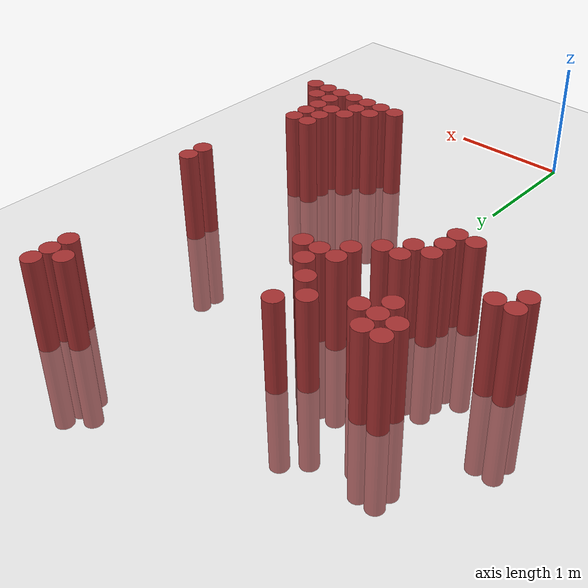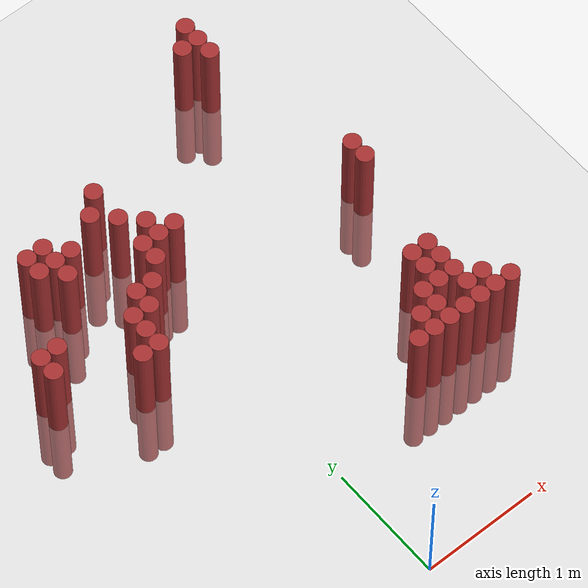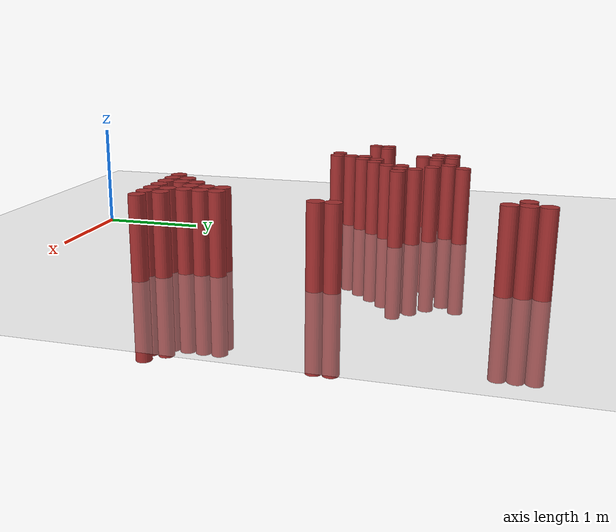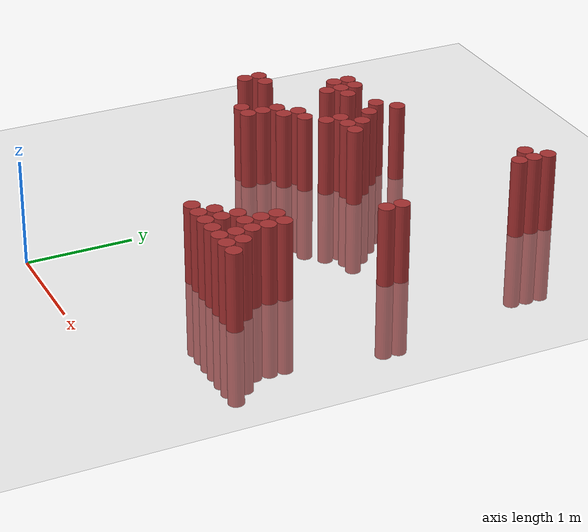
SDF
<sdf version="1.6">
 <world name="default">
  <model name="ground_plane">
   <static>1</static>
   <link name="link">
    <collision name="collision">
     <geometry><plane><normal>0 0 1</normal><size>100 100</size></plane></geometry>
     <surface><friction><ode><mu>100</mu><mu2>50</mu2></ode></friction></surface>
    </collision>
    <visual name="visual">
     <cast_shadows>0</cast_shadows>
     <geometry><plane><normal>0 0 1</normal><size>100 100</size></plane></geometry>
     <material>
      <script><uri>file://media/materials/scripts/gazebo.material</uri><name>Gazebo/Grey</name></script>
     </material>
    </visual>
   </link>
  </model>
  <model name="unit_cylinder_156">
   <static>1</static>
   <pose>-1.325000 2.725000 0.000000 0.000000 0.000000 0.000000</pose>
   <link name="link">
    <inertial>
     <mass>1</mass>
     <inertia><ixx>0.145833</ixx><ixy>0</ixy><ixz>0</ixz><iyy>0.145833</iyy><iyz>0</iyz><izz>0.125</izz></inertia>
    </inertial>
    <collision name="collision">
     <geometry><cylinder><radius>0.075000</radius><length>1.5</length></cylinder></geometry>
    </collision>
    <visual name="visual">
     <geometry><cylinder><radius>0.075000</radius><length>1.5</length></cylinder></geometry>
     <material>
      <ambient>0.648000 0.192000 0.192000 1</ambient>
      <diffuse>0.648000 0.192000 0.192000 1</diffuse>
     </material>
     <material>
      <script><name>Gazebo/Grey</name><uri>file://media/materials/scripts/gazebo.material</uri></script>
     </material>
    </visual>
   </link>
  </model>
  <model name="unit_cylinder_157">
   <static>1</static>
   <pose>-1.325000 2.875000 0.000000 0.000000 0.000000 0.000000</pose>
   <link name="link">
    <inertial>
     <mass>1</mass>
     <inertia><ixx>0.145833</ixx><ixy>0</ixy><ixz>0</ixz><iyy>0.145833</iyy><iyz>0</iyz><izz>0.125</izz></inertia>
    </inertial>
    <collision name="collision">
     <geometry><cylinder><radius>0.075000</radius><length>1.5</length></cylinder></geometry>
    </collision>
    <visual name="visual">
     <geometry><cylinder><radius>0.075000</radius><length>1.5</length></cylinder></geometry>
     <material>
      <ambient>0.648000 0.192000 0.192000 1</ambient>
      <diffuse>0.648000 0.192000 0.192000 1</diffuse>
     </material>
     <material>
      <script><name>Gazebo/Grey</name><uri>file://media/materials/scripts/gazebo.material</uri></script>
     </material>
    </visual>
   </link>
  </model>
  <model name="unit_cylinder_159">
   <static>1</static>
   <pose>-1.175000 2.875000 0.000000 0.000000 0.000000 0.000000</pose>
   <link name="link">
    <inertial>
     <mass>1</mass>
     <inertia><ixx>0.145833</ixx><ixy>0</ixy><ixz>0</ixz><iyy>0.145833</iyy><iyz>0</iyz><izz>0.125</izz></inertia>
    </inertial>
    <collision name="collision">
     <geometry><cylinder><radius>0.075000</radius><length>1.5</length></cylinder></geometry>
    </collision>
    <visual name="visual">
     <geometry><cylinder><radius>0.075000</radius><length>1.5</length></cylinder></geometry>
     <material>
      <ambient>0.648000 0.192000 0.192000 1</ambient>
      <diffuse>0.648000 0.192000 0.192000 1</diffuse>
     </material>
     <material>
      <script><name>Gazebo/Grey</name><uri>file://media/materials/scripts/gazebo.material</uri></script>
     </material>
    </visual>
   </link>
  </model>
  <model name="unit_cylinder_166">
   <static>1</static>
   <pose>-0.875000 3.475000 0.000000 0.000000 0.000000 0.000000</pose>
   <link name="link">
    <inertial>
     <mass>1</mass>
     <inertia><ixx>0.145833</ixx><ixy>0</ixy><ixz>0</ixz><iyy>0.145833</iyy><iyz>0</iyz><izz>0.125</izz></inertia>
    </inertial>
    <collision name="collision">
     <geometry><cylinder><radius>0.075000</radius><length>1.5</length></cylinder></geometry>
    </collision>
    <visual name="visual">
     <geometry><cylinder><radius>0.075000</radius><length>1.5</length></cylinder></geometry>
     <material>
      <ambient>0.648000 0.192000 0.192000 1</ambient>
      <diffuse>0.648000 0.192000 0.192000 1</diffuse>
     </material>
     <material>
      <script><name>Gazebo/Grey</name><uri>file://media/materials/scripts/gazebo.material</uri></script>
     </material>
    </visual>
   </link>
  </model>
  <model name="unit_cylinder_167">
   <static>1</static>
   <pose>-0.875000 3.625000 0.000000 0.000000 0.000000 0.000000</pose>
   <link name="link">
    <inertial>
     <mass>1</mass>
     <inertia><ixx>0.145833</ixx><ixy>0</ixy><ixz>0</ixz><iyy>0.145833</iyy><iyz>0</iyz><izz>0.125</izz></inertia>
    </inertial>
    <collision name="collision">
     <geometry><cylinder><radius>0.075000</radius><length>1.5</length></cylinder></geometry>
    </collision>
    <visual name="visual">
     <geometry><cylinder><radius>0.075000</radius><length>1.5</length></cylinder></geometry>
     <material>
      <ambient>0.648000 0.192000 0.192000 1</ambient>
      <diffuse>0.648000 0.192000 0.192000 1</diffuse>
     </material>
     <material>
      <script><name>Gazebo/Grey</name><uri>file://media/materials/scripts/gazebo.material</uri></script>
     </material>
    </visual>
   </link>
  </model>
  <model name="unit_cylinder_170">
   <static>1</static>
   <pose>-0.725000 2.425000 0.000000 0.000000 0.000000 0.000000</pose>
   <link name="link">
    <inertial>
     <mass>1</mass>
     <inertia><ixx>0.145833</ixx><ixy>0</ixy><ixz>0</ixz><iyy>0.145833</iyy><iyz>0</iyz><izz>0.125</izz></inertia>
    </inertial>
    <collision name="collision">
     <geometry><cylinder><radius>0.075000</radius><length>1.5</length></cylinder></geometry>
    </collision>
    <visual name="visual">
     <geometry><cylinder><radius>0.075000</radius><length>1.5</length></cylinder></geometry>
     <material>
      <ambient>0.648000 0.192000 0.192000 1</ambient>
      <diffuse>0.648000 0.192000 0.192000 1</diffuse>
     </material>
     <material>
      <script><name>Gazebo/Grey</name><uri>file://media/materials/scripts/gazebo.material</uri></script>
     </material>
    </visual>
   </link>
  </model>
  <model name="unit_cylinder_171">
   <static>1</static>
   <pose>-0.725000 3.325000 0.000000 0.000000 0.000000 0.000000</pose>
   <link name="link">
    <inertial>
     <mass>1</mass>
     <inertia><ixx>0.145833</ixx><ixy>0</ixy><ixz>0</ixz><iyy>0.145833</iyy><iyz>0</iyz><izz>0.125</izz></inertia>
    </inertial>
    <collision name="collision">
     <geometry><cylinder><radius>0.075000</radius><length>1.5</length></cylinder></geometry>
    </collision>
    <visual name="visual">
     <geometry><cylinder><radius>0.075000</radius><length>1.5</length></cylinder></geometry>
     <material>
      <ambient>0.648000 0.192000 0.192000 1</ambient>
      <diffuse>0.648000 0.192000 0.192000 1</diffuse>
     </material>
     <material>
      <script><name>Gazebo/Grey</name><uri>file://media/materials/scripts/gazebo.material</uri></script>
     </material>
    </visual>
   </link>
  </model>
  <model name="unit_cylinder_172">
   <static>1</static>
   <pose>-0.725000 3.475000 0.000000 0.000000 0.000000 0.000000</pose>
   <link name="link">
    <inertial>
     <mass>1</mass>
     <inertia><ixx>0.145833</ixx><ixy>0</ixy><ixz>0</ixz><iyy>0.145833</iyy><iyz>0</iyz><izz>0.125</izz></inertia>
    </inertial>
    <collision name="collision">
     <geometry><cylinder><radius>0.075000</radius><length>1.5</length></cylinder></geometry>
    </collision>
    <visual name="visual">
     <geometry><cylinder><radius>0.075000</radius><length>1.5</length></cylinder></geometry>
     <material>
      <ambient>0.648000 0.192000 0.192000 1</ambient>
      <diffuse>0.648000 0.192000 0.192000 1</diffuse>
     </material>
     <material>
      <script><name>Gazebo/Grey</name><uri>file://media/materials/scripts/gazebo.material</uri></script>
     </material>
    </visual>
   </link>
  </model>
  <model name="unit_cylinder_173">
   <static>1</static>
   <pose>-0.725000 3.625000 0.000000 0.000000 0.000000 0.000000</pose>
   <link name="link">
    <inertial>
     <mass>1</mass>
     <inertia><ixx>0.145833</ixx><ixy>0</ixy><ixz>0</ixz><iyy>0.145833</iyy><iyz>0</iyz><izz>0.125</izz></inertia>
    </inertial>
    <collision name="collision">
     <geometry><cylinder><radius>0.075000</radius><length>1.5</length></cylinder></geometry>
    </collision>
    <visual name="visual">
     <geometry><cylinder><radius>0.075000</radius><length>1.5</length></cylinder></geometry>
     <material>
      <ambient>0.648000 0.192000 0.192000 1</ambient>
      <diffuse>0.648000 0.192000 0.192000 1</diffuse>
     </material>
     <material>
      <script><name>Gazebo/Grey</name><uri>file://media/materials/scripts/gazebo.material</uri></script>
     </material>
    </visual>
   </link>
  </model>
  <model name="unit_cylinder_176">
   <static>1</static>
   <pose>-0.575000 2.425000 0.000000 0.000000 0.000000 0.000000</pose>
   <link name="link">
    <inertial>
     <mass>1</mass>
     <inertia><ixx>0.145833</ixx><ixy>0</ixy><ixz>0</ixz><iyy>0.145833</iyy><iyz>0</iyz><izz>0.125</izz></inertia>
    </inertial>
    <collision name="collision">
     <geometry><cylinder><radius>0.075000</radius><length>1.5</length></cylinder></geometry>
    </collision>
    <visual name="visual">
     <geometry><cylinder><radius>0.075000</radius><length>1.5</length></cylinder></geometry>
     <material>
      <ambient>0.648000 0.192000 0.192000 1</ambient>
      <diffuse>0.648000 0.192000 0.192000 1</diffuse>
     </material>
     <material>
      <script><name>Gazebo/Grey</name><uri>file://media/materials/scripts/gazebo.material</uri></script>
     </material>
    </visual>
   </link>
  </model>
  <model name="unit_cylinder_177">
   <static>1</static>
   <pose>-0.575000 2.575000 0.000000 0.000000 0.000000 0.000000</pose>
   <link name="link">
    <inertial>
     <mass>1</mass>
     <inertia><ixx>0.145833</ixx><ixy>0</ixy><ixz>0</ixz><iyy>0.145833</iyy><iyz>0</iyz><izz>0.125</izz></inertia>
    </inertial>
    <collision name="collision">
     <geometry><cylinder><radius>0.075000</radius><length>1.5</length></cylinder></geometry>
    </collision>
    <visual name="visual">
     <geometry><cylinder><radius>0.075000</radius><length>1.5</length></cylinder></geometry>
     <material>
      <ambient>0.648000 0.192000 0.192000 1</ambient>
      <diffuse>0.648000 0.192000 0.192000 1</diffuse>
     </material>
     <material>
      <script><name>Gazebo/Grey</name><uri>file://media/materials/scripts/gazebo.material</uri></script>
     </material>
    </visual>
   </link>
  </model>
  <model name="unit_cylinder_178">
   <static>1</static>
   <pose>-0.575000 2.725000 0.000000 0.000000 0.000000 0.000000</pose>
   <link name="link">
    <inertial>
     <mass>1</mass>
     <inertia><ixx>0.145833</ixx><ixy>0</ixy><ixz>0</ixz><iyy>0.145833</iyy><iyz>0</iyz><izz>0.125</izz></inertia>
    </inertial>
    <collision name="collision">
     <geometry><cylinder><radius>0.075000</radius><length>1.5</length></cylinder></geometry>
    </collision>
    <visual name="visual">
     <geometry><cylinder><radius>0.075000</radius><length>1.5</length></cylinder></geometry>
     <material>
      <ambient>0.648000 0.192000 0.192000 1</ambient>
      <diffuse>0.648000 0.192000 0.192000 1</diffuse>
     </material>
     <material>
      <script><name>Gazebo/Grey</name><uri>file://media/materials/scripts/gazebo.material</uri></script>
     </material>
    </visual>
   </link>
  </model>
  <model name="unit_cylinder_179">
   <static>1</static>
   <pose>-0.575000 3.475000 0.000000 0.000000 0.000000 0.000000</pose>
   <link name="link">
    <inertial>
     <mass>1</mass>
     <inertia><ixx>0.145833</ixx><ixy>0</ixy><ixz>0</ixz><iyy>0.145833</iyy><iyz>0</iyz><izz>0.125</izz></inertia>
    </inertial>
    <collision name="collision">
     <geometry><cylinder><radius>0.075000</radius><length>1.5</length></cylinder></geometry>
    </collision>
    <visual name="visual">
     <geometry><cylinder><radius>0.075000</radius><length>1.5</length></cylinder></geometry>
     <material>
      <ambient>0.648000 0.192000 0.192000 1</ambient>
      <diffuse>0.648000 0.192000 0.192000 1</diffuse>
     </material>
     <material>
      <script><name>Gazebo/Grey</name><uri>file://media/materials/scripts/gazebo.material</uri></script>
     </material>
    </visual>
   </link>
  </model>
  <model name="unit_cylinder_182">
   <static>1</static>
   <pose>-0.425000 2.725000 0.000000 0.000000 0.000000 0.000000</pose>
   <link name="link">
    <inertial>
     <mass>1</mass>
     <inertia><ixx>0.145833</ixx><ixy>0</ixy><ixz>0</ixz><iyy>0.145833</iyy><iyz>0</iyz><izz>0.125</izz></inertia>
    </inertial>
    <collision name="collision">
     <geometry><cylinder><radius>0.075000</radius><length>1.5</length></cylinder></geometry>
    </collision>
    <visual name="visual">
     <geometry><cylinder><radius>0.075000</radius><length>1.5</length></cylinder></geometry>
     <material>
      <ambient>0.648000 0.192000 0.192000 1</ambient>
      <diffuse>0.648000 0.192000 0.192000 1</diffuse>
     </material>
     <material>
      <script><name>Gazebo/Grey</name><uri>file://media/materials/scripts/gazebo.material</uri></script>
     </material>
    </visual>
   </link>
  </model>
  <model name="unit_cylinder_183">
   <static>1</static>
   <pose>-0.425000 2.875000 0.000000 0.000000 0.000000 0.000000</pose>
   <link name="link">
    <inertial>
     <mass>1</mass>
     <inertia><ixx>0.145833</ixx><ixy>0</ixy><ixz>0</ixz><iyy>0.145833</iyy><iyz>0</iyz><izz>0.125</izz></inertia>
    </inertial>
    <collision name="collision">
     <geometry><cylinder><radius>0.075000</radius><length>1.5</length></cylinder></geometry>
    </collision>
    <visual name="visual">
     <geometry><cylinder><radius>0.075000</radius><length>1.5</length></cylinder></geometry>
     <material>
      <ambient>0.648000 0.192000 0.192000 1</ambient>
      <diffuse>0.648000 0.192000 0.192000 1</diffuse>
     </material>
     <material>
      <script><name>Gazebo/Grey</name><uri>file://media/materials/scripts/gazebo.material</uri></script>
     </material>
    </visual>
   </link>
  </model>
  <model name="unit_cylinder_185">
   <static>1</static>
   <pose>-0.275000 2.875000 0.000000 0.000000 0.000000 0.000000</pose>
   <link name="link">
    <inertial>
     <mass>1</mass>
     <inertia><ixx>0.145833</ixx><ixy>0</ixy><ixz>0</ixz><iyy>0.145833</iyy><iyz>0</iyz><izz>0.125</izz></inertia>
    </inertial>
    <collision name="collision">
     <geometry><cylinder><radius>0.075000</radius><length>1.5</length></cylinder></geometry>
    </collision>
    <visual name="visual">
     <geometry><cylinder><radius>0.075000</radius><length>1.5</length></cylinder></geometry>
     <material>
      <ambient>0.648000 0.192000 0.192000 1</ambient>
      <diffuse>0.648000 0.192000 0.192000 1</diffuse>
     </material>
     <material>
      <script><name>Gazebo/Grey</name><uri>file://media/materials/scripts/gazebo.material</uri></script>
     </material>
    </visual>
   </link>
  </model>
  <model name="unit_cylinder_186">
   <static>1</static>
   <pose>-0.275000 3.625000 0.000000 0.000000 0.000000 0.000000</pose>
   <link name="link">
    <inertial>
     <mass>1</mass>
     <inertia><ixx>0.145833</ixx><ixy>0</ixy><ixz>0</ixz><iyy>0.145833</iyy><iyz>0</iyz><izz>0.125</izz></inertia>
    </inertial>
    <collision name="collision">
     <geometry><cylinder><radius>0.075000</radius><length>1.5</length></cylinder></geometry>
    </collision>
    <visual name="visual">
     <geometry><cylinder><radius>0.075000</radius><length>1.5</length></cylinder></geometry>
     <material>
      <ambient>0.648000 0.192000 0.192000 1</ambient>
      <diffuse>0.648000 0.192000 0.192000 1</diffuse>
     </material>
     <material>
      <script><name>Gazebo/Grey</name><uri>file://media/materials/scripts/gazebo.material</uri></script>
     </material>
    </visual>
   </link>
  </model>
  <model name="unit_cylinder_187">
   <static>1</static>
   <pose>-0.125000 3.025000 0.000000 0.000000 0.000000 0.000000</pose>
   <link name="link">
    <inertial>
     <mass>1</mass>
     <inertia><ixx>0.145833</ixx><ixy>0</ixy><ixz>0</ixz><iyy>0.145833</iyy><iyz>0</iyz><izz>0.125</izz></inertia>
    </inertial>
    <collision name="collision">
     <geometry><cylinder><radius>0.075000</radius><length>1.5</length></cylinder></geometry>
    </collision>
    <visual name="visual">
     <geometry><cylinder><radius>0.075000</radius><length>1.5</length></cylinder></geometry>
     <material>
      <ambient>0.648000 0.192000 0.192000 1</ambient>
      <diffuse>0.648000 0.192000 0.192000 1</diffuse>
     </material>
     <material>
      <script><name>Gazebo/Grey</name><uri>file://media/materials/scripts/gazebo.material</uri></script>
     </material>
    </visual>
   </link>
  </model>
  <model name="unit_cylinder_188">
   <static>1</static>
   <pose>-0.125000 3.175000 0.000000 0.000000 0.000000 0.000000</pose>
   <link name="link">
    <inertial>
     <mass>1</mass>
     <inertia><ixx>0.145833</ixx><ixy>0</ixy><ixz>0</ixz><iyy>0.145833</iyy><iyz>0</iyz><izz>0.125</izz></inertia>
    </inertial>
    <collision name="collision">
     <geometry><cylinder><radius>0.075000</radius><length>1.5</length></cylinder></geometry>
    </collision>
    <visual name="visual">
     <geometry><cylinder><radius>0.075000</radius><length>1.5</length></cylinder></geometry>
     <material>
      <ambient>0.648000 0.192000 0.192000 1</ambient>
      <diffuse>0.648000 0.192000 0.192000 1</diffuse>
     </material>
     <material>
      <script><name>Gazebo/Grey</name><uri>file://media/materials/scripts/gazebo.material</uri></script>
     </material>
    </visual>
   </link>
  </model>
  <model name="unit_cylinder_189">
   <static>1</static>
   <pose>-0.125000 3.475000 0.000000 0.000000 0.000000 0.000000</pose>
   <link name="link">
    <inertial>
     <mass>1</mass>
     <inertia><ixx>0.145833</ixx><ixy>0</ixy><ixz>0</ixz><iyy>0.145833</iyy><iyz>0</iyz><izz>0.125</izz></inertia>
    </inertial>
    <collision name="collision">
     <geometry><cylinder><radius>0.075000</radius><length>1.5</length></cylinder></geometry>
    </collision>
    <visual name="visual">
     <geometry><cylinder><radius>0.075000</radius><length>1.5</length></cylinder></geometry>
     <material>
      <ambient>0.648000 0.192000 0.192000 1</ambient>
      <diffuse>0.648000 0.192000 0.192000 1</diffuse>
     </material>
     <material>
      <script><name>Gazebo/Grey</name><uri>file://media/materials/scripts/gazebo.material</uri></script>
     </material>
    </visual>
   </link>
  </model>
  <model name="unit_cylinder_190">
   <static>1</static>
   <pose>-0.125000 3.775000 0.000000 0.000000 0.000000 0.000000</pose>
   <link name="link">
    <inertial>
     <mass>1</mass>
     <inertia><ixx>0.145833</ixx><ixy>0</ixy><ixz>0</ixz><iyy>0.145833</iyy><iyz>0</iyz><izz>0.125</izz></inertia>
    </inertial>
    <collision name="collision">
     <geometry><cylinder><radius>0.075000</radius><length>1.5</length></cylinder></geometry>
    </collision>
    <visual name="visual">
     <geometry><cylinder><radius>0.075000</radius><length>1.5</length></cylinder></geometry>
     <material>
      <ambient>0.648000 0.192000 0.192000 1</ambient>
      <diffuse>0.648000 0.192000 0.192000 1</diffuse>
     </material>
     <material>
      <script><name>Gazebo/Grey</name><uri>file://media/materials/scripts/gazebo.material</uri></script>
     </material>
    </visual>
   </link>
  </model>
  <model name="unit_cylinder_191">
   <static>1</static>
   <pose>0.025000 3.175000 0.000000 0.000000 0.000000 0.000000</pose>
   <link name="link">
    <inertial>
     <mass>1</mass>
     <inertia><ixx>0.145833</ixx><ixy>0</ixy><ixz>0</ixz><iyy>0.145833</iyy><iyz>0</iyz><izz>0.125</izz></inertia>
    </inertial>
    <collision name="collision">
     <geometry><cylinder><radius>0.075000</radius><length>1.5</length></cylinder></geometry>
    </collision>
    <visual name="visual">
     <geometry><cylinder><radius>0.075000</radius><length>1.5</length></cylinder></geometry>
     <material>
      <ambient>0.648000 0.192000 0.192000 1</ambient>
      <diffuse>0.648000 0.192000 0.192000 1</diffuse>
     </material>
     <material>
      <script><name>Gazebo/Grey</name><uri>file://media/materials/scripts/gazebo.material</uri></script>
     </material>
    </visual>
   </link>
  </model>
  <model name="unit_cylinder_192">
   <static>1</static>
   <pose>0.025000 3.325000 0.000000 0.000000 0.000000 0.000000</pose>
   <link name="link">
    <inertial>
     <mass>1</mass>
     <inertia><ixx>0.145833</ixx><ixy>0</ixy><ixz>0</ixz><iyy>0.145833</iyy><iyz>0</iyz><izz>0.125</izz></inertia>
    </inertial>
    <collision name="collision">
     <geometry><cylinder><radius>0.075000</radius><length>1.5</length></cylinder></geometry>
    </collision>
    <visual name="visual">
     <geometry><cylinder><radius>0.075000</radius><length>1.5</length></cylinder></geometry>
     <material>
      <ambient>0.648000 0.192000 0.192000 1</ambient>
      <diffuse>0.648000 0.192000 0.192000 1</diffuse>
     </material>
     <material>
      <script><name>Gazebo/Grey</name><uri>file://media/materials/scripts/gazebo.material</uri></script>
     </material>
    </visual>
   </link>
  </model>
  <model name="unit_cylinder_193">
   <static>1</static>
   <pose>0.175000 3.175000 0.000000 0.000000 0.000000 0.000000</pose>
   <link name="link">
    <inertial>
     <mass>1</mass>
     <inertia><ixx>0.145833</ixx><ixy>0</ixy><ixz>0</ixz><iyy>0.145833</iyy><iyz>0</iyz><izz>0.125</izz></inertia>
    </inertial>
    <collision name="collision">
     <geometry><cylinder><radius>0.075000</radius><length>1.5</length></cylinder></geometry>
    </collision>
    <visual name="visual">
     <geometry><cylinder><radius>0.075000</radius><length>1.5</length></cylinder></geometry>
     <material>
      <ambient>0.648000 0.192000 0.192000 1</ambient>
      <diffuse>0.648000 0.192000 0.192000 1</diffuse>
     </material>
     <material>
      <script><name>Gazebo/Grey</name><uri>file://media/materials/scripts/gazebo.material</uri></script>
     </material>
    </visual>
   </link>
  </model>
  <model name="unit_cylinder_195">
   <static>1</static>
   <pose>0.925000 1.225000 0.000000 0.000000 0.000000 0.000000</pose>
   <link name="link">
    <inertial>
     <mass>1</mass>
     <inertia><ixx>0.145833</ixx><ixy>0</ixy><ixz>0</ixz><iyy>0.145833</iyy><iyz>0</iyz><izz>0.125</izz></inertia>
    </inertial>
    <collision name="collision">
     <geometry><cylinder><radius>0.075000</radius><length>1.5</length></cylinder></geometry>
    </collision>
    <visual name="visual">
     <geometry><cylinder><radius>0.075000</radius><length>1.5</length></cylinder></geometry>
     <material>
      <ambient>0.648000 0.192000 0.192000 1</ambient>
      <diffuse>0.648000 0.192000 0.192000 1</diffuse>
     </material>
     <material>
      <script><name>Gazebo/Grey</name><uri>file://media/materials/scripts/gazebo.material</uri></script>
     </material>
    </visual>
   </link>
  </model>
  <model name="unit_cylinder_198">
   <static>1</static>
   <pose>1.075000 1.225000 0.000000 0.000000 0.000000 0.000000</pose>
   <link name="link">
    <inertial>
     <mass>1</mass>
     <inertia><ixx>0.145833</ixx><ixy>0</ixy><ixz>0</ixz><iyy>0.145833</iyy><iyz>0</iyz><izz>0.125</izz></inertia>
    </inertial>
    <collision name="collision">
     <geometry><cylinder><radius>0.075000</radius><length>1.5</length></cylinder></geometry>
    </collision>
    <visual name="visual">
     <geometry><cylinder><radius>0.075000</radius><length>1.5</length></cylinder></geometry>
     <material>
      <ambient>0.648000 0.192000 0.192000 1</ambient>
      <diffuse>0.648000 0.192000 0.192000 1</diffuse>
     </material>
     <material>
      <script><name>Gazebo/Grey</name><uri>file://media/materials/scripts/gazebo.material</uri></script>
     </material>
    </visual>
   </link>
  </model>
  <model name="unit_cylinder_199">
   <static>1</static>
   <pose>1.075000 1.375000 0.000000 0.000000 0.000000 0.000000</pose>
   <link name="link">
    <inertial>
     <mass>1</mass>
     <inertia><ixx>0.145833</ixx><ixy>0</ixy><ixz>0</ixz><iyy>0.145833</iyy><iyz>0</iyz><izz>0.125</izz></inertia>
    </inertial>
    <collision name="collision">
     <geometry><cylinder><radius>0.075000</radius><length>1.5</length></cylinder></geometry>
    </collision>
    <visual name="visual">
     <geometry><cylinder><radius>0.075000</radius><length>1.5</length></cylinder></geometry>
     <material>
      <ambient>0.648000 0.192000 0.192000 1</ambient>
      <diffuse>0.648000 0.192000 0.192000 1</diffuse>
     </material>
     <material>
      <script><name>Gazebo/Grey</name><uri>file://media/materials/scripts/gazebo.material</uri></script>
     </material>
    </visual>
   </link>
  </model>
  <model name="unit_cylinder_200">
   <static>1</static>
   <pose>1.225000 1.225000 0.000000 0.000000 0.000000 0.000000</pose>
   <link name="link">
    <inertial>
     <mass>1</mass>
     <inertia><ixx>0.145833</ixx><ixy>0</ixy><ixz>0</ixz><iyy>0.145833</iyy><iyz>0</iyz><izz>0.125</izz></inertia>
    </inertial>
    <collision name="collision">
     <geometry><cylinder><radius>0.075000</radius><length>1.5</length></cylinder></geometry>
    </collision>
    <visual name="visual">
     <geometry><cylinder><radius>0.075000</radius><length>1.5</length></cylinder></geometry>
     <material>
      <ambient>0.648000 0.192000 0.192000 1</ambient>
      <diffuse>0.648000 0.192000 0.192000 1</diffuse>
     </material>
     <material>
      <script><name>Gazebo/Grey</name><uri>file://media/materials/scripts/gazebo.material</uri></script>
     </material>
    </visual>
   </link>
  </model>
  <model name="unit_cylinder_201">
   <static>1</static>
   <pose>1.225000 1.375000 0.000000 0.000000 0.000000 0.000000</pose>
   <link name="link">
    <inertial>
     <mass>1</mass>
     <inertia><ixx>0.145833</ixx><ixy>0</ixy><ixz>0</ixz><iyy>0.145833</iyy><iyz>0</iyz><izz>0.125</izz></inertia>
    </inertial>
    <collision name="collision">
     <geometry><cylinder><radius>0.075000</radius><length>1.5</length></cylinder></geometry>
    </collision>
    <visual name="visual">
     <geometry><cylinder><radius>0.075000</radius><length>1.5</length></cylinder></geometry>
     <material>
      <ambient>0.648000 0.192000 0.192000 1</ambient>
      <diffuse>0.648000 0.192000 0.192000 1</diffuse>
     </material>
     <material>
      <script><name>Gazebo/Grey</name><uri>file://media/materials/scripts/gazebo.material</uri></script>
     </material>
    </visual>
   </link>
  </model>
  <model name="unit_cylinder_202">
   <static>1</static>
   <pose>1.225000 1.525000 0.000000 0.000000 0.000000 0.000000</pose>
   <link name="link">
    <inertial>
     <mass>1</mass>
     <inertia><ixx>0.145833</ixx><ixy>0</ixy><ixz>0</ixz><iyy>0.145833</iyy><iyz>0</iyz><izz>0.125</izz></inertia>
    </inertial>
    <collision name="collision">
     <geometry><cylinder><radius>0.075000</radius><length>1.5</length></cylinder></geometry>
    </collision>
    <visual name="visual">
     <geometry><cylinder><radius>0.075000</radius><length>1.5</length></cylinder></geometry>
     <material>
      <ambient>0.648000 0.192000 0.192000 1</ambient>
      <diffuse>0.648000 0.192000 0.192000 1</diffuse>
     </material>
     <material>
      <script><name>Gazebo/Grey</name><uri>file://media/materials/scripts/gazebo.material</uri></script>
     </material>
    </visual>
   </link>
  </model>
  <model name="unit_cylinder_203">
   <static>1</static>
   <pose>1.225000 4.375000 0.000000 0.000000 0.000000 0.000000</pose>
   <link name="link">
    <inertial>
     <mass>1</mass>
     <inertia><ixx>0.145833</ixx><ixy>0</ixy><ixz>0</ixz><iyy>0.145833</iyy><iyz>0</iyz><izz>0.125</izz></inertia>
    </inertial>
    <collision name="collision">
     <geometry><cylinder><radius>0.075000</radius><length>1.5</length></cylinder></geometry>
    </collision>
    <visual name="visual">
     <geometry><cylinder><radius>0.075000</radius><length>1.5</length></cylinder></geometry>
     <material>
      <ambient>0.648000 0.192000 0.192000 1</ambient>
      <diffuse>0.648000 0.192000 0.192000 1</diffuse>
     </material>
     <material>
      <script><name>Gazebo/Grey</name><uri>file://media/materials/scripts/gazebo.material</uri></script>
     </material>
    </visual>
   </link>
  </model>
  <model name="unit_cylinder_204">
   <static>1</static>
   <pose>1.375000 1.225000 0.000000 0.000000 0.000000 0.000000</pose>
   <link name="link">
    <inertial>
     <mass>1</mass>
     <inertia><ixx>0.145833</ixx><ixy>0</ixy><ixz>0</ixz><iyy>0.145833</iyy><iyz>0</iyz><izz>0.125</izz></inertia>
    </inertial>
    <collision name="collision">
     <geometry><cylinder><radius>0.075000</radius><length>1.5</length></cylinder></geometry>
    </collision>
    <visual name="visual">
     <geometry><cylinder><radius>0.075000</radius><length>1.5</length></cylinder></geometry>
     <material>
      <ambient>0.648000 0.192000 0.192000 1</ambient>
      <diffuse>0.648000 0.192000 0.192000 1</diffuse>
     </material>
     <material>
      <script><name>Gazebo/Grey</name><uri>file://media/materials/scripts/gazebo.material</uri></script>
     </material>
    </visual>
   </link>
  </model>
  <model name="unit_cylinder_205">
   <static>1</static>
   <pose>1.375000 1.525000 0.000000 0.000000 0.000000 0.000000</pose>
   <link name="link">
    <inertial>
     <mass>1</mass>
     <inertia><ixx>0.145833</ixx><ixy>0</ixy><ixz>0</ixz><iyy>0.145833</iyy><iyz>0</iyz><izz>0.125</izz></inertia>
    </inertial>
    <collision name="collision">
     <geometry><cylinder><radius>0.075000</radius><length>1.5</length></cylinder></geometry>
    </collision>
    <visual name="visual">
     <geometry><cylinder><radius>0.075000</radius><length>1.5</length></cylinder></geometry>
     <material>
      <ambient>0.648000 0.192000 0.192000 1</ambient>
      <diffuse>0.648000 0.192000 0.192000 1</diffuse>
     </material>
     <material>
      <script><name>Gazebo/Grey</name><uri>file://media/materials/scripts/gazebo.material</uri></script>
     </material>
    </visual>
   </link>
  </model>
  <model name="unit_cylinder_206">
   <static>1</static>
   <pose>1.375000 1.675000 0.000000 0.000000 0.000000 0.000000</pose>
   <link name="link">
    <inertial>
     <mass>1</mass>
     <inertia><ixx>0.145833</ixx><ixy>0</ixy><ixz>0</ixz><iyy>0.145833</iyy><iyz>0</iyz><izz>0.125</izz></inertia>
    </inertial>
    <collision name="collision">
     <geometry><cylinder><radius>0.075000</radius><length>1.5</length></cylinder></geometry>
    </collision>
    <visual name="visual">
     <geometry><cylinder><radius>0.075000</radius><length>1.5</length></cylinder></geometry>
     <material>
      <ambient>0.648000 0.192000 0.192000 1</ambient>
      <diffuse>0.648000 0.192000 0.192000 1</diffuse>
     </material>
     <material>
      <script><name>Gazebo/Grey</name><uri>file://media/materials/scripts/gazebo.material</uri></script>
     </material>
    </visual>
   </link>
  </model>
  <model name="unit_cylinder_207">
   <static>1</static>
   <pose>1.375000 1.825000 0.000000 0.000000 0.000000 0.000000</pose>
   <link name="link">
    <inertial>
     <mass>1</mass>
     <inertia><ixx>0.145833</ixx><ixy>0</ixy><ixz>0</ixz><iyy>0.145833</iyy><iyz>0</iyz><izz>0.125</izz></inertia>
    </inertial>
    <collision name="collision">
     <geometry><cylinder><radius>0.075000</radius><length>1.5</length></cylinder></geometry>
    </collision>
    <visual name="visual">
     <geometry><cylinder><radius>0.075000</radius><length>1.5</length></cylinder></geometry>
     <material>
      <ambient>0.648000 0.192000 0.192000 1</ambient>
      <diffuse>0.648000 0.192000 0.192000 1</diffuse>
     </material>
     <material>
      <script><name>Gazebo/Grey</name><uri>file://media/materials/scripts/gazebo.material</uri></script>
     </material>
    </visual>
   </link>
  </model>
  <model name="unit_cylinder_208">
   <static>1</static>
   <pose>1.375000 4.225000 0.000000 0.000000 0.000000 0.000000</pose>
   <link name="link">
    <inertial>
     <mass>1</mass>
     <inertia><ixx>0.145833</ixx><ixy>0</ixy><ixz>0</ixz><iyy>0.145833</iyy><iyz>0</iyz><izz>0.125</izz></inertia>
    </inertial>
    <collision name="collision">
     <geometry><cylinder><radius>0.075000</radius><length>1.5</length></cylinder></geometry>
    </collision>
    <visual name="visual">
     <geometry><cylinder><radius>0.075000</radius><length>1.5</length></cylinder></geometry>
     <material>
      <ambient>0.648000 0.192000 0.192000 1</ambient>
      <diffuse>0.648000 0.192000 0.192000 1</diffuse>
     </material>
     <material>
      <script><name>Gazebo/Grey</name><uri>file://media/materials/scripts/gazebo.material</uri></script>
     </material>
    </visual>
   </link>
  </model>
  <model name="unit_cylinder_209">
   <static>1</static>
   <pose>1.375000 4.375000 0.000000 0.000000 0.000000 0.000000</pose>
   <link name="link">
    <inertial>
     <mass>1</mass>
     <inertia><ixx>0.145833</ixx><ixy>0</ixy><ixz>0</ixz><iyy>0.145833</iyy><iyz>0</iyz><izz>0.125</izz></inertia>
    </inertial>
    <collision name="collision">
     <geometry><cylinder><radius>0.075000</radius><length>1.5</length></cylinder></geometry>
    </collision>
    <visual name="visual">
     <geometry><cylinder><radius>0.075000</radius><length>1.5</length></cylinder></geometry>
     <material>
      <ambient>0.648000 0.192000 0.192000 1</ambient>
      <diffuse>0.648000 0.192000 0.192000 1</diffuse>
     </material>
     <material>
      <script><name>Gazebo/Grey</name><uri>file://media/materials/scripts/gazebo.material</uri></script>
     </material>
    </visual>
   </link>
  </model>
  <model name="unit_cylinder_210">
   <static>1</static>
   <pose>1.375000 4.525000 0.000000 0.000000 0.000000 0.000000</pose>
   <link name="link">
    <inertial>
     <mass>1</mass>
     <inertia><ixx>0.145833</ixx><ixy>0</ixy><ixz>0</ixz><iyy>0.145833</iyy><iyz>0</iyz><izz>0.125</izz></inertia>
    </inertial>
    <collision name="collision">
     <geometry><cylinder><radius>0.075000</radius><length>1.5</length></cylinder></geometry>
    </collision>
    <visual name="visual">
     <geometry><cylinder><radius>0.075000</radius><length>1.5</length></cylinder></geometry>
     <material>
      <ambient>0.648000 0.192000 0.192000 1</ambient>
      <diffuse>0.648000 0.192000 0.192000 1</diffuse>
     </material>
     <material>
      <script><name>Gazebo/Grey</name><uri>file://media/materials/scripts/gazebo.material</uri></script>
     </material>
    </visual>
   </link>
  </model>
  <model name="unit_cylinder_211">
   <static>1</static>
   <pose>1.525000 1.225000 0.000000 0.000000 0.000000 0.000000</pose>
   <link name="link">
    <inertial>
     <mass>1</mass>
     <inertia><ixx>0.145833</ixx><ixy>0</ixy><ixz>0</ixz><iyy>0.145833</iyy><iyz>0</iyz><izz>0.125</izz></inertia>
    </inertial>
    <collision name="collision">
     <geometry><cylinder><radius>0.075000</radius><length>1.5</length></cylinder></geometry>
    </collision>
    <visual name="visual">
     <geometry><cylinder><radius>0.075000</radius><length>1.5</length></cylinder></geometry>
     <material>
      <ambient>0.648000 0.192000 0.192000 1</ambient>
      <diffuse>0.648000 0.192000 0.192000 1</diffuse>
     </material>
     <material>
      <script><name>Gazebo/Grey</name><uri>file://media/materials/scripts/gazebo.material</uri></script>
     </material>
    </visual>
   </link>
  </model>
  <model name="unit_cylinder_212">
   <static>1</static>
   <pose>1.525000 1.375000 0.000000 0.000000 0.000000 0.000000</pose>
   <link name="link">
    <inertial>
     <mass>1</mass>
     <inertia><ixx>0.145833</ixx><ixy>0</ixy><ixz>0</ixz><iyy>0.145833</iyy><iyz>0</iyz><izz>0.125</izz></inertia>
    </inertial>
    <collision name="collision">
     <geometry><cylinder><radius>0.075000</radius><length>1.5</length></cylinder></geometry>
    </collision>
    <visual name="visual">
     <geometry><cylinder><radius>0.075000</radius><length>1.5</length></cylinder></geometry>
     <material>
      <ambient>0.648000 0.192000 0.192000 1</ambient>
      <diffuse>0.648000 0.192000 0.192000 1</diffuse>
     </material>
     <material>
      <script><name>Gazebo/Grey</name><uri>file://media/materials/scripts/gazebo.material</uri></script>
     </material>
    </visual>
   </link>
  </model>
  <model name="unit_cylinder_213">
   <static>1</static>
   <pose>1.525000 1.525000 0.000000 0.000000 0.000000 0.000000</pose>
   <link name="link">
    <inertial>
     <mass>1</mass>
     <inertia><ixx>0.145833</ixx><ixy>0</ixy><ixz>0</ixz><iyy>0.145833</iyy><iyz>0</iyz><izz>0.125</izz></inertia>
    </inertial>
    <collision name="collision">
     <geometry><cylinder><radius>0.075000</radius><length>1.5</length></cylinder></geometry>
    </collision>
    <visual name="visual">
     <geometry><cylinder><radius>0.075000</radius><length>1.5</length></cylinder></geometry>
     <material>
      <ambient>0.648000 0.192000 0.192000 1</ambient>
      <diffuse>0.648000 0.192000 0.192000 1</diffuse>
     </material>
     <material>
      <script><name>Gazebo/Grey</name><uri>file://media/materials/scripts/gazebo.material</uri></script>
     </material>
    </visual>
   </link>
  </model>
  <model name="unit_cylinder_214">
   <static>1</static>
   <pose>1.525000 1.675000 0.000000 0.000000 0.000000 0.000000</pose>
   <link name="link">
    <inertial>
     <mass>1</mass>
     <inertia><ixx>0.145833</ixx><ixy>0</ixy><ixz>0</ixz><iyy>0.145833</iyy><iyz>0</iyz><izz>0.125</izz></inertia>
    </inertial>
    <collision name="collision">
     <geometry><cylinder><radius>0.075000</radius><length>1.5</length></cylinder></geometry>
    </collision>
    <visual name="visual">
     <geometry><cylinder><radius>0.075000</radius><length>1.5</length></cylinder></geometry>
     <material>
      <ambient>0.648000 0.192000 0.192000 1</ambient>
      <diffuse>0.648000 0.192000 0.192000 1</diffuse>
     </material>
     <material>
      <script><name>Gazebo/Grey</name><uri>file://media/materials/scripts/gazebo.material</uri></script>
     </material>
    </visual>
   </link>
  </model>
  <model name="unit_cylinder_215">
   <static>1</static>
   <pose>1.525000 1.825000 0.000000 0.000000 0.000000 0.000000</pose>
   <link name="link">
    <inertial>
     <mass>1</mass>
     <inertia><ixx>0.145833</ixx><ixy>0</ixy><ixz>0</ixz><iyy>0.145833</iyy><iyz>0</iyz><izz>0.125</izz></inertia>
    </inertial>
    <collision name="collision">
     <geometry><cylinder><radius>0.075000</radius><length>1.5</length></cylinder></geometry>
    </collision>
    <visual name="visual">
     <geometry><cylinder><radius>0.075000</radius><length>1.5</length></cylinder></geometry>
     <material>
      <ambient>0.648000 0.192000 0.192000 1</ambient>
      <diffuse>0.648000 0.192000 0.192000 1</diffuse>
     </material>
     <material>
      <script><name>Gazebo/Grey</name><uri>file://media/materials/scripts/gazebo.material</uri></script>
     </material>
    </visual>
   </link>
  </model>
  <model name="unit_cylinder_216">
   <static>1</static>
   <pose>1.675000 1.225000 0.000000 0.000000 0.000000 0.000000</pose>
   <link name="link">
    <inertial>
     <mass>1</mass>
     <inertia><ixx>0.145833</ixx><ixy>0</ixy><ixz>0</ixz><iyy>0.145833</iyy><iyz>0</iyz><izz>0.125</izz></inertia>
    </inertial>
    <collision name="collision">
     <geometry><cylinder><radius>0.075000</radius><length>1.5</length></cylinder></geometry>
    </collision>
    <visual name="visual">
     <geometry><cylinder><radius>0.075000</radius><length>1.5</length></cylinder></geometry>
     <material>
      <ambient>0.648000 0.192000 0.192000 1</ambient>
      <diffuse>0.648000 0.192000 0.192000 1</diffuse>
     </material>
     <material>
      <script><name>Gazebo/Grey</name><uri>file://media/materials/scripts/gazebo.material</uri></script>
     </material>
    </visual>
   </link>
  </model>
  <model name="unit_cylinder_217">
   <static>1</static>
   <pose>1.675000 1.375000 0.000000 0.000000 0.000000 0.000000</pose>
   <link name="link">
    <inertial>
     <mass>1</mass>
     <inertia><ixx>0.145833</ixx><ixy>0</ixy><ixz>0</ixz><iyy>0.145833</iyy><iyz>0</iyz><izz>0.125</izz></inertia>
    </inertial>
    <collision name="collision">
     <geometry><cylinder><radius>0.075000</radius><length>1.5</length></cylinder></geometry>
    </collision>
    <visual name="visual">
     <geometry><cylinder><radius>0.075000</radius><length>1.5</length></cylinder></geometry>
     <material>
      <ambient>0.648000 0.192000 0.192000 1</ambient>
      <diffuse>0.648000 0.192000 0.192000 1</diffuse>
     </material>
     <material>
      <script><name>Gazebo/Grey</name><uri>file://media/materials/scripts/gazebo.material</uri></script>
     </material>
    </visual>
   </link>
  </model>
  <model name="unit_cylinder_218">
   <static>1</static>
   <pose>1.675000 2.725000 0.000000 0.000000 0.000000 0.000000</pose>
   <link name="link">
    <inertial>
     <mass>1</mass>
     <inertia><ixx>0.145833</ixx><ixy>0</ixy><ixz>0</ixz><iyy>0.145833</iyy><iyz>0</iyz><izz>0.125</izz></inertia>
    </inertial>
    <collision name="collision">
     <geometry><cylinder><radius>0.075000</radius><length>1.5</length></cylinder></geometry>
    </collision>
    <visual name="visual">
     <geometry><cylinder><radius>0.075000</radius><length>1.5</length></cylinder></geometry>
     <material>
      <ambient>0.648000 0.192000 0.192000 1</ambient>
      <diffuse>0.648000 0.192000 0.192000 1</diffuse>
     </material>
     <material>
      <script><name>Gazebo/Grey</name><uri>file://media/materials/scripts/gazebo.material</uri></script>
     </material>
    </visual>
   </link>
  </model>
  <model name="unit_cylinder_219">
   <static>1</static>
   <pose>1.675000 2.875000 0.000000 0.000000 0.000000 0.000000</pose>
   <link name="link">
    <inertial>
     <mass>1</mass>
     <inertia><ixx>0.145833</ixx><ixy>0</ixy><ixz>0</ixz><iyy>0.145833</iyy><iyz>0</iyz><izz>0.125</izz></inertia>
    </inertial>
    <collision name="collision">
     <geometry><cylinder><radius>0.075000</radius><length>1.5</length></cylinder></geometry>
    </collision>
    <visual name="visual">
     <geometry><cylinder><radius>0.075000</radius><length>1.5</length></cylinder></geometry>
     <material>
      <ambient>0.648000 0.192000 0.192000 1</ambient>
      <diffuse>0.648000 0.192000 0.192000 1</diffuse>
     </material>
     <material>
      <script><name>Gazebo/Grey</name><uri>file://media/materials/scripts/gazebo.material</uri></script>
     </material>
    </visual>
   </link>
  </model>
  <model name="unit_cylinder_222">
   <static>1</static>
   <pose>1.825000 1.225000 0.000000 0.000000 0.000000 0.000000</pose>
   <link name="link">
    <inertial>
     <mass>1</mass>
     <inertia><ixx>0.145833</ixx><ixy>0</ixy><ixz>0</ixz><iyy>0.145833</iyy><iyz>0</iyz><izz>0.125</izz></inertia>
    </inertial>
    <collision name="collision">
     <geometry><cylinder><radius>0.075000</radius><length>1.5</length></cylinder></geometry>
    </collision>
    <visual name="visual">
     <geometry><cylinder><radius>0.075000</radius><length>1.5</length></cylinder></geometry>
     <material>
      <ambient>0.648000 0.192000 0.192000 1</ambient>
      <diffuse>0.648000 0.192000 0.192000 1</diffuse>
     </material>
     <material>
      <script><name>Gazebo/Grey</name><uri>file://media/materials/scripts/gazebo.material</uri></script>
     </material>
    </visual>
   </link>
  </model>
 </world>
</sdf>
